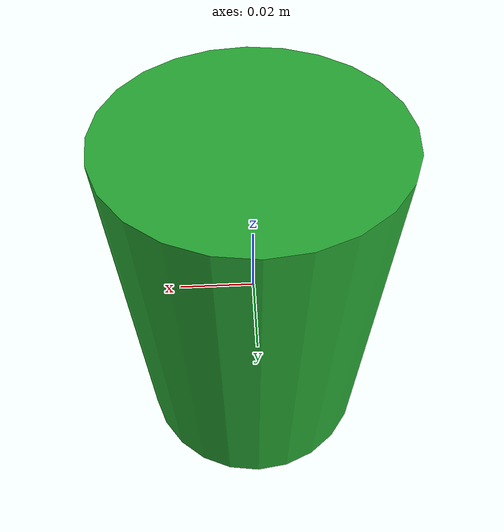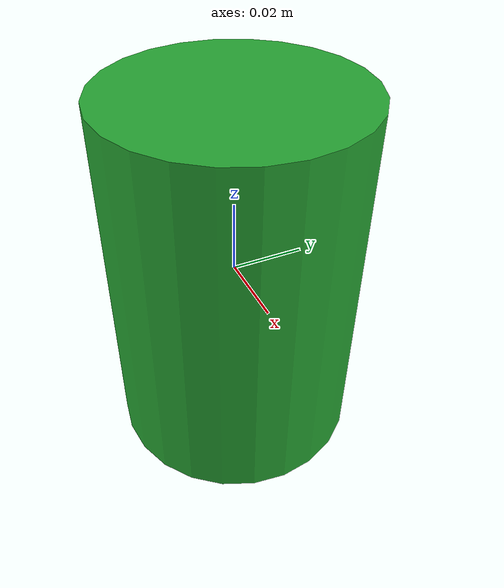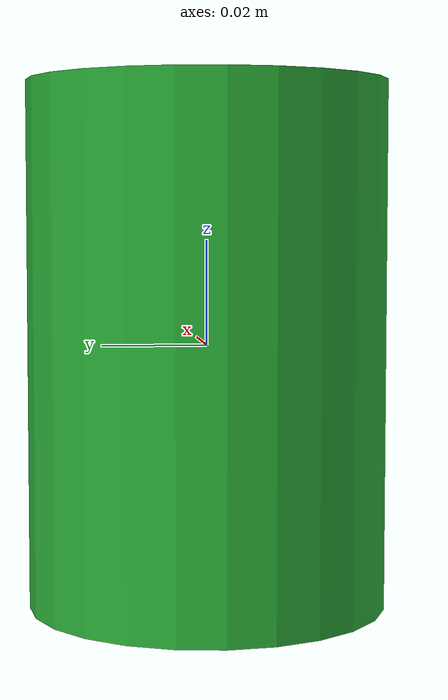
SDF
<sdf version="1.6"><model name="model"><static>true</static><link name="link"><pose>0 0 0 0 0 0</pose><collision name="collision"><geometry><cylinder><radius>0.034043106527661175</radius><length>0.1</length></cylinder></geometry></collision><visual name="visual"><geometry><cylinder><radius>0.034043106527661175</radius><length>0.1</length></cylinder></geometry><material><script><name>Gazebo/Green</name><uri>file://media/materials/scripts/gazebo.material</uri></script></material></visual></link></model></sdf>
